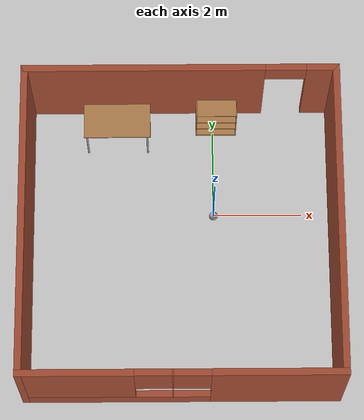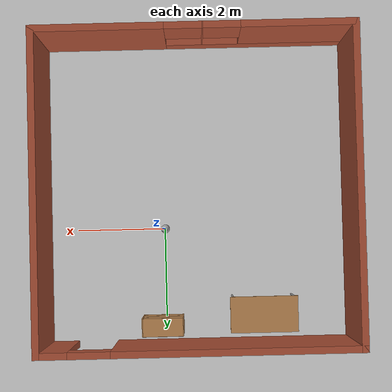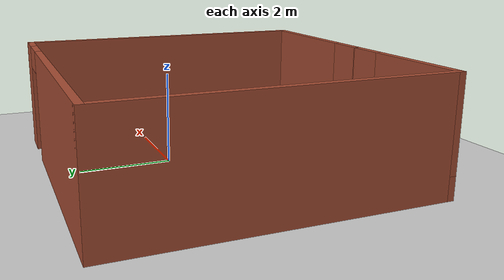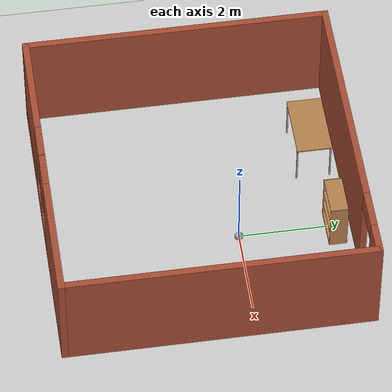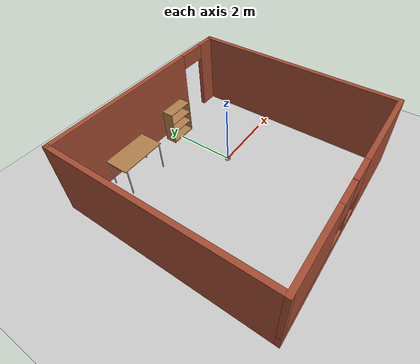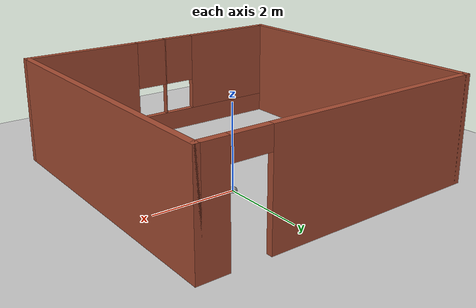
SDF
<sdf version="1.7">
 <world name="default">
  <plugin name="hello" filename="libhello.so"/>
  <light name="sun" type="directional">
   <pose>0 0 10 0 -0 0</pose>
   <diffuse>0.8 0.8 0.8 1</diffuse>
   <specular>0.2 0.2 0.2 1</specular>
   <attenuation>
    <range>1000</range>
    <constant>0.9</constant>
    <linear>0.01</linear>
    <quadratic>0.001</quadratic>
   </attenuation>
   <direction>-0.5 0.1 -0.9</direction>
   <spot><inner_angle>0</inner_angle><outer_angle>0</outer_angle><falloff>0</falloff></spot>
  </light>
  <model name="ground_plane">
   <static>1</static>
   <link name="link">
    <collision name="collision">
     <geometry><plane><normal>0 0 1</normal><size>100 100</size></plane></geometry>
     <surface>
      <contact><collide_bitmask>65535</collide_bitmask></contact>
      <friction><ode><mu>100</mu><mu2>50</mu2></ode></friction>
     </surface>
    </collision>
    <visual name="visual">
     <cast_shadows>0</cast_shadows>
     <geometry><plane><normal>0 0 1</normal><size>100 100</size></plane></geometry>
     <material>
      <script><uri>file://media/materials/scripts/gazebo.material</uri><name>Gazebo/Grey</name></script>
     </material>
    </visual>
   </link>
  </model>
  <gravity>0 0 -9.8</gravity>
  <magnetic_field>6e-06 2.3e-05 -4.2e-05</magnetic_field>
  <atmosphere type="adiabatic"/>
  <physics type="ode">
   <max_step_size>0.001</max_step_size>
   <real_time_factor>1</real_time_factor>
   <real_time_update_rate>1000</real_time_update_rate>
  </physics>
  <scene><ambient>0.4 0.4 0.4 1</ambient><background>0.7 0.7 0.7 1</background><shadows>1</shadows></scene>
  <audio><device>default</device></audio>
  <spherical_coordinates>
   <surface_model>EARTH_WGS84</surface_model>
   <latitude_deg>0</latitude_deg>
   <longitude_deg>0</longitude_deg>
   <elevation>0</elevation>
   <heading_deg>0</heading_deg>
  </spherical_coordinates>
  <model name="building">
   <pose>-0.740842 -0.826236 0 0 -0 0</pose>
   <link name="Wall_0">
    <collision name="Wall_0_Collision">
     <geometry><box><size>7 0.15 2.5</size></box></geometry>
     <pose>0 0 1.25 0 -0 0</pose>
    </collision>
    <visual name="Wall_0_Visual">
     <pose>0 0 1.25 0 -0 0</pose>
     <geometry><box><size>7 0.15 2.5</size></box></geometry>
     <material>
      <script><uri>file://media/materials/scripts/gazebo.material</uri><name>Gazebo/Bricks</name></script>
      <ambient>1 1 1 1</ambient>
     </material>
     <meta><layer>0</layer></meta>
    </visual>
    <pose>-3.425 0 0 0 -0 1.5708</pose>
   </link>
   <link name="Wall_1">
    <pose>0 3.425 0 0 -0 0</pose>
    <visual name="Wall_1_Visual_0">
     <pose>-0.814679 0 1.25 0 -0 0</pose>
     <geometry><box><size>5.37064 0.15 2.5</size></box></geometry>
     <material>
      <script><uri>file://media/materials/scripts/gazebo.material</uri><name>Gazebo/Bricks</name></script>
      <ambient>1 1 1 1</ambient>
     </material>
     <meta><layer>0</layer></meta>
    </visual>
    <collision name="Wall_1_Collision_0">
     <geometry><box><size>5.37064 0.15 2.5</size></box></geometry>
     <pose>-0.814679 0 1.25 0 -0 0</pose>
    </collision>
    <visual name="Wall_1_Visual_1">
     <pose>3.13532 0 1.25 0 -0 0</pose>
     <geometry><box><size>0.729357 0.15 2.5</size></box></geometry>
     <material>
      <script><uri>file://media/materials/scripts/gazebo.material</uri><name>Gazebo/Bricks</name></script>
      <ambient>1 1 1 1</ambient>
     </material>
     <meta><layer>0</layer></meta>
    </visual>
    <collision name="Wall_1_Collision_1">
     <geometry><box><size>0.729357 0.15 2.5</size></box></geometry>
     <pose>3.13532 0 1.25 0 -0 0</pose>
    </collision>
    <visual name="Wall_1_Visual_2">
     <pose>2.32064 0 2.25 0 -0 0</pose>
     <geometry><box><size>0.9 0.15 0.5</size></box></geometry>
     <material>
      <script><uri>file://media/materials/scripts/gazebo.material</uri><name>Gazebo/Bricks</name></script>
      <ambient>1 1 1 1</ambient>
     </material>
     <meta><layer>0</layer></meta>
    </visual>
    <collision name="Wall_1_Collision_2">
     <geometry><box><size>0.9 0.15 0.5</size></box></geometry>
     <pose>2.32064 0 2.25 0 -0 0</pose>
    </collision>
   </link>
   <link name="Wall_2">
    <collision name="Wall_2_Collision">
     <geometry><box><size>7 0.15 2.5</size></box></geometry>
     <pose>0 0 1.25 0 -0 0</pose>
    </collision>
    <visual name="Wall_2_Visual">
     <pose>0 0 1.25 0 -0 0</pose>
     <geometry><box><size>7 0.15 2.5</size></box></geometry>
     <material>
      <script><uri>file://media/materials/scripts/gazebo.material</uri><name>Gazebo/Bricks</name></script>
      <ambient>1 1 1 1</ambient>
     </material>
     <meta><layer>0</layer></meta>
    </visual>
    <pose>3.425 0 0 0 -0 -1.5708</pose>
   </link>
   <link name="Wall_3">
    <pose>0 -3.425 0 0 -0 3.14159</pose>
    <visual name="Wall_3_Visual_0">
     <pose>-2.05961 0 1.25 0 -0 0</pose>
     <geometry><box><size>2.88077 0.15 2.5</size></box></geometry>
     <material>
      <script><uri>file://media/materials/scripts/gazebo.material</uri><name>Gazebo/Bricks</name></script>
      <ambient>1 1 1 1</ambient>
     </material>
     <meta><layer>0</layer></meta>
    </visual>
    <collision name="Wall_3_Collision_0">
     <geometry><box><size>2.88077 0.15 2.5</size></box></geometry>
     <pose>-2.05961 0 1.25 0 -0 0</pose>
    </collision>
    <visual name="Wall_3_Visual_1">
     <pose>1.44039 0 0.25 0 -0 0</pose>
     <geometry><box><size>4.11923 0.15 0.5</size></box></geometry>
     <material>
      <script><uri>file://media/materials/scripts/gazebo.material</uri><name>Gazebo/Bricks</name></script>
      <ambient>1 1 1 1</ambient>
     </material>
     <meta><layer>0</layer></meta>
    </visual>
    <collision name="Wall_3_Collision_1">
     <geometry><box><size>4.11923 0.15 0.5</size></box></geometry>
     <pose>1.44039 0 0.25 0 -0 0</pose>
    </collision>
    <visual name="Wall_3_Visual_2">
     <pose>0.193076 0 1.5 0 -0 0</pose>
     <geometry><box><size>0.024606 0.15 2</size></box></geometry>
     <material>
      <script><uri>file://media/materials/scripts/gazebo.material</uri><name>Gazebo/Bricks</name></script>
      <ambient>1 1 1 1</ambient>
     </material>
     <meta><layer>0</layer></meta>
    </visual>
    <collision name="Wall_3_Collision_2">
     <geometry><box><size>0.024606 0.15 2</size></box></geometry>
     <pose>0.193076 0 1.5 0 -0 0</pose>
    </collision>
    <visual name="Wall_3_Visual_3">
     <pose>2.25269 0 1.5 0 -0 0</pose>
     <geometry><box><size>2.49462 0.15 2</size></box></geometry>
     <material>
      <script><uri>file://media/materials/scripts/gazebo.material</uri><name>Gazebo/Bricks</name></script>
      <ambient>1 1 1 1</ambient>
     </material>
     <meta><layer>0</layer></meta>
    </visual>
    <collision name="Wall_3_Collision_3">
     <geometry><box><size>2.49462 0.15 2</size></box></geometry>
     <pose>2.25269 0 1.5 0 -0 0</pose>
    </collision>
    <visual name="Wall_3_Visual_4">
     <pose>-0.219227 0 1.9 0 -0 0</pose>
     <geometry><box><size>0.8 0.15 1.2</size></box></geometry>
     <material>
      <script><uri>file://media/materials/scripts/gazebo.material</uri><name>Gazebo/Bricks</name></script>
      <ambient>1 1 1 1</ambient>
     </material>
     <meta><layer>0</layer></meta>
    </visual>
    <collision name="Wall_3_Collision_4">
     <geometry><box><size>0.8 0.15 1.2</size></box></geometry>
     <pose>-0.219227 0 1.9 0 -0 0</pose>
    </collision>
    <visual name="Wall_3_Visual_5">
     <pose>0.605379 0 1.9 0 -0 0</pose>
     <geometry><box><size>0.8 0.15 1.2</size></box></geometry>
     <material>
      <script><uri>file://media/materials/scripts/gazebo.material</uri><name>Gazebo/Bricks</name></script>
      <ambient>1 1 1 1</ambient>
     </material>
     <meta><layer>0</layer></meta>
    </visual>
    <collision name="Wall_3_Collision_5">
     <geometry><box><size>0.8 0.15 1.2</size></box></geometry>
     <pose>0.605379 0 1.9 0 -0 0</pose>
    </collision>
   </link>
   <static>1</static>
  </model>
  <model name="bookshelf">
   <static>1</static>
   <link name="link">
    <inertial><mass>1</mass></inertial>
    <collision name="back">
     <pose>0 0.005 0.6 0 -0 0</pose>
     <geometry><box><size>0.9 0.01 1.2</size></box></geometry>
    </collision>
    <visual name="visual1">
     <pose>0 0.005 0.6 0 -0 0</pose>
     <geometry><box><size>0.9 0.01 1.2</size></box></geometry>
     <material>
      <script><uri>file://media/materials/scripts/gazebo.material</uri><name>Gazebo/Wood</name></script>
     </material>
    </visual>
    <collision name="left_side">
     <pose>0.45 -0.195 0.6 0 -0 0</pose>
     <geometry><box><size>0.02 0.4 1.2</size></box></geometry>
    </collision>
    <visual name="visual2">
     <pose>0.45 -0.195 0.6 0 -0 0</pose>
     <geometry><box><size>0.02 0.4 1.2</size></box></geometry>
     <material>
      <script><uri>file://media/materials/scripts/gazebo.material</uri><name>Gazebo/Wood</name></script>
     </material>
    </visual>
    <collision name="right_side">
     <pose>-0.45 -0.195 0.6 0 -0 0</pose>
     <geometry><box><size>0.02 0.4 1.2</size></box></geometry>
    </collision>
    <visual name="visual3">
     <pose>-0.45 -0.195 0.6 0 -0 0</pose>
     <geometry><box><size>0.02 0.4 1.2</size></box></geometry>
     <material>
      <script><uri>file://media/materials/scripts/gazebo.material</uri><name>Gazebo/Wood</name></script>
     </material>
    </visual>
    <collision name="bottom">
     <pose>0 -0.195 0.03 0 -0 0</pose>
     <geometry><box><size>0.88 0.4 0.06</size></box></geometry>
    </collision>
    <visual name="visual4">
     <pose>0 -0.195 0.03 0 -0 0</pose>
     <geometry><box><size>0.88 0.4 0.06</size></box></geometry>
     <material>
      <script><uri>file://media/materials/scripts/gazebo.material</uri><name>Gazebo/Wood</name></script>
     </material>
    </visual>
    <collision name="top">
     <pose>0 -0.195 1.19 0 -0 0</pose>
     <geometry><box><size>0.88 0.4 0.02</size></box></geometry>
    </collision>
    <visual name="visual5">
     <pose>0 -0.195 1.19 0 -0 0</pose>
     <geometry><box><size>0.88 0.4 0.02</size></box></geometry>
     <material>
      <script><uri>file://media/materials/scripts/gazebo.material</uri><name>Gazebo/Wood</name></script>
     </material>
    </visual>
    <collision name="low_shelf">
     <pose>0 -0.195 0.43 0 -0 0</pose>
     <geometry><box><size>0.88 0.4 0.02</size></box></geometry>
    </collision>
    <visual name="visual6">
     <pose>0 -0.195 0.43 0 -0 0</pose>
     <geometry><box><size>0.88 0.4 0.02</size></box></geometry>
     <material>
      <script><uri>file://media/materials/scripts/gazebo.material</uri><name>Gazebo/Wood</name></script>
     </material>
    </visual>
    <collision name="high_shelf">
     <pose>0 -0.195 0.8 0 -0 0</pose>
     <geometry><box><size>0.88 0.4 0.02</size></box></geometry>
    </collision>
    <visual name="visual7">
     <pose>0 -0.195 0.8 0 -0 0</pose>
     <geometry><box><size>0.88 0.4 0.02</size></box></geometry>
     <material>
      <script><uri>file://media/materials/scripts/gazebo.material</uri><name>Gazebo/Wood</name></script>
     </material>
    </visual>
   </link>
   <pose>0.073605 2.35919 0 0 -0 0</pose>
  </model>
  <model name="table">
   <static>1</static>
   <link name="link">
    <collision name="surface">
     <pose>0 0 1 0 -0 0</pose>
     <geometry><box><size>1.5 0.8 0.03</size></box></geometry>
     <surface><friction><ode><mu>0.6</mu><mu2>0.6</mu2></ode></friction></surface>
    </collision>
    <visual name="visual1">
     <pose>0 0 1 0 -0 0</pose>
     <geometry><box><size>1.5 0.8 0.03</size></box></geometry>
     <material>
      <script><uri>file://media/materials/scripts/gazebo.material</uri><name>Gazebo/Wood</name></script>
     </material>
    </visual>
    <collision name="front_left_leg">
     <pose>0.68 0.38 0.5 0 -0 0</pose>
     <geometry><cylinder><radius>0.02</radius><length>1</length></cylinder></geometry>
    </collision>
    <visual name="front_left_leg">
     <pose>0.68 0.38 0.5 0 -0 0</pose>
     <geometry><cylinder><radius>0.02</radius><length>1</length></cylinder></geometry>
     <material>
      <script><uri>file://media/materials/scripts/gazebo.material</uri><name>Gazebo/Grey</name></script>
     </material>
    </visual>
    <collision name="front_right_leg">
     <pose>0.68 -0.38 0.5 0 -0 0</pose>
     <geometry><cylinder><radius>0.02</radius><length>1</length></cylinder></geometry>
    </collision>
    <visual name="front_right_leg">
     <pose>0.68 -0.38 0.5 0 -0 0</pose>
     <geometry><cylinder><radius>0.02</radius><length>1</length></cylinder></geometry>
     <material>
      <script><uri>file://media/materials/scripts/gazebo.material</uri><name>Gazebo/Grey</name></script>
     </material>
    </visual>
    <collision name="back_right_leg">
     <pose>-0.68 -0.38 0.5 0 -0 0</pose>
     <geometry><cylinder><radius>0.02</radius><length>1</length></cylinder></geometry>
    </collision>
    <visual name="back_right_leg">
     <pose>-0.68 -0.38 0.5 0 -0 0</pose>
     <geometry><cylinder><radius>0.02</radius><length>1</length></cylinder></geometry>
     <material>
      <script><uri>file://media/materials/scripts/gazebo.material</uri><name>Gazebo/Grey</name></script>
     </material>
    </visual>
    <collision name="back_left_leg">
     <pose>-0.68 0.38 0.5 0 -0 0</pose>
     <geometry><cylinder><radius>0.02</radius><length>1</length></cylinder></geometry>
    </collision>
    <visual name="back_left_leg">
     <pose>-0.68 0.38 0.5 0 -0 0</pose>
     <geometry><cylinder><radius>0.02</radius><length>1</length></cylinder></geometry>
     <material>
      <script><uri>file://media/materials/scripts/gazebo.material</uri><name>Gazebo/Grey</name></script>
     </material>
    </visual>
   </link>
   <pose>-2.17231 1.94255 0 0 -0 0</pose>
  </model>
  <model name="my_ball">
   <link name="link_0">
    <inertial>
     <mass>1</mass>
     <inertia><ixx>0.1</ixx><ixy>0</ixy><ixz>0</ixz><iyy>0.1</iyy><iyz>0</iyz><izz>0.1</izz></inertia>
    </inertial>
    <visual name="visual">
     <geometry><sphere><radius>0.1</radius></sphere></geometry>
     <material>
      <lighting>1</lighting>
      <script><uri>file://media/materials/scripts/gazebo.material</uri><name>Gazebo/Grey</name></script>
      <shader type="pixel"><normal_map>__default__</normal_map></shader>
      <ambient>1 1 1 1</ambient>
      <diffuse>1 1 1 1</diffuse>
      <specular>1 1 1 1</specular>
      <emissive>1 1 1 1</emissive>
     </material>
    </visual>
    <collision name="collision">
     <geometry><sphere><radius>0.1</radius></sphere></geometry>
     <surface>
      <friction>
       <ode><mu>1</mu><mu2>1</mu2><fdir1>0 0 0</fdir1><slip1>0</slip1><slip2>0</slip2></ode>
       <torsional>
        <coefficient>1</coefficient>
        <patch_radius>0</patch_radius>
        <surface_radius>0</surface_radius>
        <use_patch_radius>1</use_patch_radius>
        <ode><slip>0</slip></ode>
       </torsional>
      </friction>
      <bounce><restitution_coefficient>0</restitution_coefficient><threshold>1e+06</threshold></bounce>
      <contact>
       <collide_without_contact>0</collide_without_contact>
       <collide_without_contact_bitmask>1</collide_without_contact_bitmask>
       <collide_bitmask>1</collide_bitmask>
       <ode>
        <soft_cfm>0</soft_cfm>
        <soft_erp>0.2</soft_erp>
        <kp>1e+13</kp>
        <kd>1</kd>
        <max_vel>0.01</max_vel>
        <min_depth>0</min_depth>
       </ode>
       <bullet>
        <split_impulse>1</split_impulse>
        <split_impulse_penetration_threshold>-0.01</split_impulse_penetration_threshold>
        <soft_cfm>0</soft_cfm>
        <soft_erp>0.2</soft_erp>
        <kp>1e+13</kp>
        <kd>1</kd>
       </bullet>
      </contact>
     </surface>
    </collision>
   </link>
   <static>0</static>
  </model>
 </world>
</sdf>
